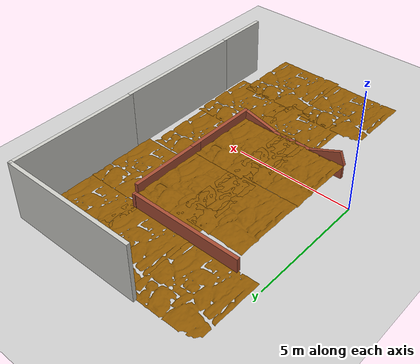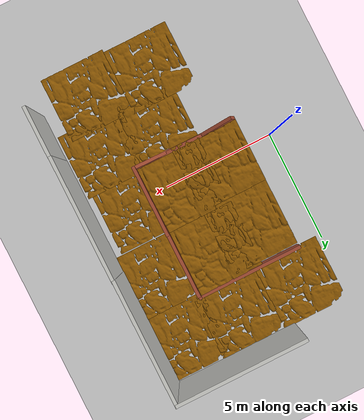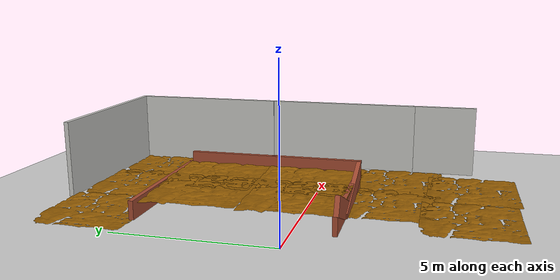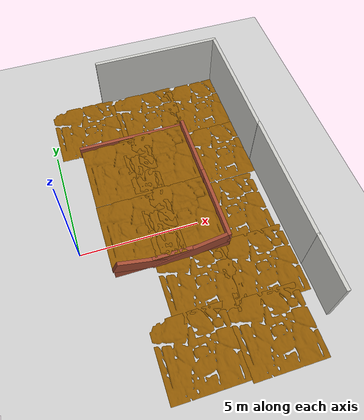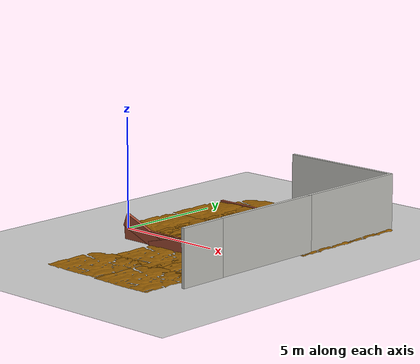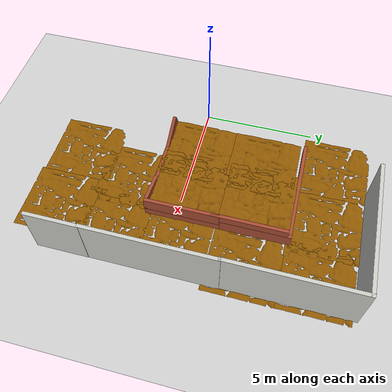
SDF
<sdf version="1.6">
 <world name="default">
  <model name="ground_plane">
   <static>1</static>
   <link name="link">
    <collision name="collision">
     <geometry><plane><normal>0 0 1</normal><size>100 100</size></plane></geometry>
     <surface>
      <contact><collide_bitmask>65535</collide_bitmask></contact>
      <friction><ode><mu>100</mu><mu2>50</mu2></ode></friction>
     </surface>
    </collision>
    <visual name="visual">
     <cast_shadows>0</cast_shadows>
     <geometry><plane><normal>0 0 1</normal><size>100 100</size></plane></geometry>
     <material>
      <script><uri>file://media/materials/scripts/gazebo.material</uri><name>Gazebo/Grey</name></script>
     </material>
    </visual>
   </link>
  </model>
  <model name="suelo_alto">
   <link name="link_0">
    <inertial>
     <mass>1</mass>
     <inertia>
      <ixx>0.166667</ixx>
      <ixy>0</ixy>
      <ixz>0</ixz>
      <iyy>0.166667</iyy>
      <iyz>0</iyz>
      <izz>0.166667</izz>
     </inertia>
    </inertial>
    <pose>-2e-06 0 0 0 -0 0</pose>
    <gravity>0</gravity>
    <visual name="visual">
     <pose>0 0 0.6 1.57 -0 0</pose>
     <geometry>
      <mesh>
       <uri>/home/christyan/catkin_sureveg/src/explorador_2/worlds/Plantas/roca2.stl</uri>
       <scale>0.005 0.003 0.005</scale>
      </mesh>
     </geometry>
     <material>
      <lighting>1</lighting>
      <script><uri>file://media/materials/scripts/gazebo.material</uri><name>Gazebo/Grey</name></script>
      <shader type="vertex"><normal_map>__default__</normal_map></shader>
      <ambient>0.561 0.349 0.008 1</ambient>
      <diffuse>0.333 0.341 0.325 1</diffuse>
      <specular>0.561 0.349 0.008 1</specular>
      <emissive>0 0 0 1</emissive>
     </material>
    </visual>
    <collision name="collision">
     <pose>0 0 0.6 1.57 -0 0</pose>
     <geometry>
      <mesh>
       <uri>/home/christyan/catkin_sureveg/src/explorador_2/worlds/Plantas/roca2.stl</uri>
       <scale>0.005 0.003 0.005</scale>
      </mesh>
     </geometry>
     <surface>
      <friction>
       <ode><mu>1</mu><mu2>1</mu2><fdir1>0 0 0</fdir1><slip1>0</slip1><slip2>0</slip2></ode>
       <torsional>
        <coefficient>1</coefficient>
        <patch_radius>0</patch_radius>
        <surface_radius>0</surface_radius>
        <use_patch_radius>1</use_patch_radius>
        <ode><slip>0</slip></ode>
       </torsional>
      </friction>
      <bounce><restitution_coefficient>0</restitution_coefficient><threshold>1e+06</threshold></bounce>
      <contact>
       <collide_without_contact>1</collide_without_contact>
       <collide_without_contact_bitmask>1</collide_without_contact_bitmask>
       <collide_bitmask>1</collide_bitmask>
       <ode>
        <soft_cfm>0</soft_cfm>
        <soft_erp>0.2</soft_erp>
        <kp>1e+13</kp>
        <kd>1</kd>
        <max_vel>0.01</max_vel>
        <min_depth>0</min_depth>
       </ode>
       <bullet>
        <split_impulse>1</split_impulse>
        <split_impulse_penetration_threshold>-0.01</split_impulse_penetration_threshold>
        <soft_cfm>0</soft_cfm>
        <soft_erp>0.2</soft_erp>
        <kp>1e+13</kp>
        <kd>1</kd>
       </bullet>
      </contact>
     </surface>
    </collision>
   </link>
   <static>0</static>
   <pose>2.60693 0.146391 0 0 -0 0</pose>
  </model>
  <model name="pared_corta_lad_2">
   <pose>3.53067 -1.26114 0 0 -0 0</pose>
   <link name="Wall_19">
    <collision name="Wall_19_Collision">
     <geometry><box><size>4.75 0.15 0.6</size></box></geometry>
     <pose>0 0 0.3 0 -0 0</pose>
    </collision>
    <visual name="Wall_19_Visual">
     <pose>0 0 0.3 0 -0 0</pose>
     <geometry><box><size>4.75 0.15 0.6</size></box></geometry>
     <material>
      <script><uri>file://media/materials/scripts/gazebo.material</uri><name>Gazebo/Bricks</name></script>
      <ambient>1 1 1 1</ambient>
     </material>
     <meta><layer>0</layer></meta>
    </visual>
   </link>
   <static>1</static>
  </model>
  <model name="pared_corta_ladrillo_1">
   <pose>5.85369 0.295655 0 0 -0 0</pose>
   <link name="Wall_13">
    <collision name="Wall_13_Collision">
     <geometry><box><size>3.25 0.15 0.6</size></box></geometry>
     <pose>0 0 0.3 0 -0 0</pose>
    </collision>
    <visual name="Wall_13_Visual">
     <pose>0 0 0.3 0 -0 0</pose>
     <geometry><box><size>3.25 0.15 0.6</size></box></geometry>
     <material>
      <script><uri>file://media/materials/scripts/gazebo.material</uri><name>Gazebo/Bricks</name></script>
      <ambient>0.996078 0.47451 0.0196078 1</ambient>
     </material>
     <meta><layer>0</layer></meta>
    </visual>
    <pose>0 -0 0 0 -0 1.5708</pose>
   </link>
   <static>1</static>
  </model>
  <model name="pared_corta_ladrillo_2">
   <pose>5.84693 3.30125 0 0 -0 0</pose>
   <link name="Wall_13">
    <collision name="Wall_13_Collision">
     <geometry><box><size>3.25 0.15 0.6</size></box></geometry>
     <pose>0 0 0.3 0 -0 0</pose>
    </collision>
    <visual name="Wall_13_Visual">
     <pose>0 0 0.3 0 -0 0</pose>
     <geometry><box><size>3.25 0.15 0.6</size></box></geometry>
     <material>
      <script><uri>file://media/materials/scripts/gazebo.material</uri><name>Gazebo/Bricks</name></script>
      <ambient>0.996078 0.47451 0.0196078 1</ambient>
     </material>
     <meta><layer>0</layer></meta>
    </visual>
    <pose>0 -0 0 0 -0 1.5708</pose>
   </link>
   <static>1</static>
  </model>
  <model name="pared_corta_lad_2_0">
   <pose>3.45558 4.83564 0 0 -0 0</pose>
   <link name="Wall_19">
    <collision name="Wall_19_Collision">
     <geometry><box><size>4.75 0.15 0.6</size></box></geometry>
     <pose>0 0 0.3 0 -0 0</pose>
    </collision>
    <visual name="Wall_19_Visual">
     <pose>0 0 0.3 0 -0 0</pose>
     <geometry><box><size>4.75 0.15 0.6</size></box></geometry>
     <material>
      <script><uri>file://media/materials/scripts/gazebo.material</uri><name>Gazebo/Bricks</name></script>
      <ambient>1 1 1 1</ambient>
     </material>
     <meta><layer>0</layer></meta>
    </visual>
   </link>
   <static>1</static>
  </model>
  <model name="suelo_alto_0">
   <link name="link_0">
    <inertial>
     <mass>1</mass>
     <inertia>
      <ixx>0.166667</ixx>
      <ixy>0</ixy>
      <ixz>0</ixz>
      <iyy>0.166667</iyy>
      <iyz>0</iyz>
      <izz>0.166667</izz>
     </inertia>
    </inertial>
    <pose>-2e-06 0 0 0 -0 0</pose>
    <gravity>0</gravity>
    <visual name="visual">
     <pose>0 0 0.6 1.57 -0 0</pose>
     <geometry>
      <mesh>
       <uri>/home/christyan/catkin_sureveg/src/explorador_2/worlds/Plantas/roca2.stl</uri>
       <scale>0.005 0.003 0.005</scale>
      </mesh>
     </geometry>
     <material>
      <lighting>1</lighting>
      <script><uri>file://media/materials/scripts/gazebo.material</uri><name>Gazebo/Grey</name></script>
      <shader type="vertex"><normal_map>__default__</normal_map></shader>
      <ambient>0.561 0.349 0.008 1</ambient>
      <diffuse>0.333 0.341 0.325 1</diffuse>
      <specular>0.561 0.349 0.008 1</specular>
      <emissive>0 0 0 1</emissive>
     </material>
    </visual>
    <collision name="collision">
     <pose>0 0 0.6 1.57 -0 0</pose>
     <geometry>
      <mesh>
       <uri>/home/christyan/catkin_sureveg/src/explorador_2/worlds/Plantas/roca2.stl</uri>
       <scale>0.005 0.003 0.005</scale>
      </mesh>
     </geometry>
     <surface>
      <friction>
       <ode><mu>1</mu><mu2>1</mu2><fdir1>0 0 0</fdir1><slip1>0</slip1><slip2>0</slip2></ode>
       <torsional>
        <coefficient>1</coefficient>
        <patch_radius>0</patch_radius>
        <surface_radius>0</surface_radius>
        <use_patch_radius>1</use_patch_radius>
        <ode><slip>0</slip></ode>
       </torsional>
      </friction>
      <bounce><restitution_coefficient>0</restitution_coefficient><threshold>1e+06</threshold></bounce>
      <contact>
       <collide_without_contact>1</collide_without_contact>
       <collide_without_contact_bitmask>1</collide_without_contact_bitmask>
       <collide_bitmask>1</collide_bitmask>
       <ode>
        <soft_cfm>0</soft_cfm>
        <soft_erp>0.2</soft_erp>
        <kp>1e+13</kp>
        <kd>1</kd>
        <max_vel>0.01</max_vel>
        <min_depth>0</min_depth>
       </ode>
       <bullet>
        <split_impulse>1</split_impulse>
        <split_impulse_penetration_threshold>-0.01</split_impulse_penetration_threshold>
        <soft_cfm>0</soft_cfm>
        <soft_erp>0.2</soft_erp>
        <kp>1e+13</kp>
        <kd>1</kd>
       </bullet>
      </contact>
     </surface>
    </collision>
   </link>
   <static>0</static>
   <pose>2.62225 3.13264 0 0 -0 0</pose>
  </model>
  <model name="suelo_alto_1">
   <link name="link_0">
    <inertial>
     <mass>1</mass>
     <inertia>
      <ixx>0.166667</ixx>
      <ixy>0</ixy>
      <ixz>0</ixz>
      <iyy>0.166667</iyy>
      <iyz>0</iyz>
      <izz>0.166667</izz>
     </inertia>
    </inertial>
    <pose>-2e-06 0 0 0 -0 0</pose>
    <gravity>0</gravity>
    <visual name="visual">
     <pose>0 0 0.6 1.57 -0 0</pose>
     <geometry>
      <mesh>
       <uri>/home/christyan/catkin_sureveg/src/explorador_2/worlds/Plantas/roca2.stl</uri>
       <scale>0.005 0.003 0.005</scale>
      </mesh>
     </geometry>
     <material>
      <lighting>1</lighting>
      <script><uri>file://media/materials/scripts/gazebo.material</uri><name>Gazebo/Grey</name></script>
      <shader type="vertex"><normal_map>__default__</normal_map></shader>
      <ambient>0.561 0.349 0.008 1</ambient>
      <diffuse>0.333 0.341 0.325 1</diffuse>
      <specular>0.561 0.349 0.008 1</specular>
      <emissive>0 0 0 1</emissive>
     </material>
    </visual>
    <collision name="collision">
     <pose>0 0 0.6 1.57 -0 0</pose>
     <geometry>
      <mesh>
       <uri>/home/christyan/catkin_sureveg/src/explorador_2/worlds/Plantas/roca2.stl</uri>
       <scale>0.005 0.003 0.005</scale>
      </mesh>
     </geometry>
     <surface>
      <friction>
       <ode><mu>1</mu><mu2>1</mu2><fdir1>0 0 0</fdir1><slip1>0</slip1><slip2>0</slip2></ode>
       <torsional>
        <coefficient>1</coefficient>
        <patch_radius>0</patch_radius>
        <surface_radius>0</surface_radius>
        <use_patch_radius>1</use_patch_radius>
        <ode><slip>0</slip></ode>
       </torsional>
      </friction>
      <bounce><restitution_coefficient>0</restitution_coefficient><threshold>1e+06</threshold></bounce>
      <contact>
       <collide_without_contact>1</collide_without_contact>
       <collide_without_contact_bitmask>1</collide_without_contact_bitmask>
       <collide_bitmask>1</collide_bitmask>
       <ode>
        <soft_cfm>0</soft_cfm>
        <soft_erp>0.2</soft_erp>
        <kp>1e+13</kp>
        <kd>1</kd>
        <max_vel>0.01</max_vel>
        <min_depth>0</min_depth>
       </ode>
       <bullet>
        <split_impulse>1</split_impulse>
        <split_impulse_penetration_threshold>-0.01</split_impulse_penetration_threshold>
        <soft_cfm>0</soft_cfm>
        <soft_erp>0.2</soft_erp>
        <kp>1e+13</kp>
        <kd>1</kd>
       </bullet>
      </contact>
     </surface>
    </collision>
   </link>
   <static>0</static>
   <pose>4.36566 0.301741 0 0 -0 0</pose>
  </model>
  <model name="suelo_alto_2">
   <link name="link_0">
    <inertial>
     <mass>1</mass>
     <inertia>
      <ixx>0.166667</ixx>
      <ixy>0</ixy>
      <ixz>0</ixz>
      <iyy>0.166667</iyy>
      <iyz>0</iyz>
      <izz>0.166667</izz>
     </inertia>
    </inertial>
    <pose>-2e-06 0 0 0 -0 0</pose>
    <gravity>0</gravity>
    <visual name="visual">
     <pose>0 0 0.6 1.57 -0 0</pose>
     <geometry>
      <mesh>
       <uri>/home/christyan/catkin_sureveg/src/explorador_2/worlds/Plantas/roca2.stl</uri>
       <scale>0.005 0.003 0.005</scale>
      </mesh>
     </geometry>
     <material>
      <lighting>1</lighting>
      <script><uri>file://media/materials/scripts/gazebo.material</uri><name>Gazebo/Grey</name></script>
      <shader type="vertex"><normal_map>__default__</normal_map></shader>
      <ambient>0.561 0.349 0.008 1</ambient>
      <diffuse>0.333 0.341 0.325 1</diffuse>
      <specular>0.561 0.349 0.008 1</specular>
      <emissive>0 0 0 1</emissive>
     </material>
    </visual>
    <collision name="collision">
     <pose>0 0 0.6 1.57 -0 0</pose>
     <geometry>
      <mesh>
       <uri>/home/christyan/catkin_sureveg/src/explorador_2/worlds/Plantas/roca2.stl</uri>
       <scale>0.005 0.003 0.005</scale>
      </mesh>
     </geometry>
     <surface>
      <friction>
       <ode><mu>1</mu><mu2>1</mu2><fdir1>0 0 0</fdir1><slip1>0</slip1><slip2>0</slip2></ode>
       <torsional>
        <coefficient>1</coefficient>
        <patch_radius>0</patch_radius>
        <surface_radius>0</surface_radius>
        <use_patch_radius>1</use_patch_radius>
        <ode><slip>0</slip></ode>
       </torsional>
      </friction>
      <bounce><restitution_coefficient>0</restitution_coefficient><threshold>1e+06</threshold></bounce>
      <contact>
       <collide_without_contact>1</collide_without_contact>
       <collide_without_contact_bitmask>1</collide_without_contact_bitmask>
       <collide_bitmask>1</collide_bitmask>
       <ode>
        <soft_cfm>0</soft_cfm>
        <soft_erp>0.2</soft_erp>
        <kp>1e+13</kp>
        <kd>1</kd>
        <max_vel>0.01</max_vel>
        <min_depth>0</min_depth>
       </ode>
       <bullet>
        <split_impulse>1</split_impulse>
        <split_impulse_penetration_threshold>-0.01</split_impulse_penetration_threshold>
        <soft_cfm>0</soft_cfm>
        <soft_erp>0.2</soft_erp>
        <kp>1e+13</kp>
        <kd>1</kd>
       </bullet>
      </contact>
     </surface>
    </collision>
   </link>
   <static>0</static>
   <pose>4.34843 3.27788 0 0 -0 0</pose>
  </model>
  <model name="pared_2_0">
   <pose>5.59936 7.8412 0 0 -0 0</pose>
   <link name="Wall_24">
    <collision name="Wall_24_Collision">
     <geometry><box><size>5.75 0.15 2.5</size></box></geometry>
     <pose>0 0 1.25 0 -0 0</pose>
    </collision>
    <visual name="Wall_24_Visual">
     <pose>0 0 1.25 0 -0 0</pose>
     <geometry><box><size>5.75 0.15 2.5</size></box></geometry>
     <material>
      <script><uri>file://media/materials/scripts/gazebo.material</uri><name>Gazebo/CeilingTiled</name></script>
      <ambient>1 1 1 1</ambient>
     </material>
     <meta><layer>0</layer></meta>
    </visual>
   </link>
   <static>1</static>
  </model>
  <model name="pared_1_2">
   <pose>8.41269 5.15772 0 0 -0 0</pose>
   <link name="Wall_21">
    <collision name="Wall_21_Collision">
     <geometry><box><size>5.5 0.15 2.5</size></box></geometry>
     <pose>0 0 1.25 0 -0 0</pose>
    </collision>
    <visual name="Wall_21_Visual">
     <pose>0 0 1.25 0 -0 0</pose>
     <geometry><box><size>5.5 0.15 2.5</size></box></geometry>
     <material>
      <script><uri>file://media/materials/scripts/gazebo.material</uri><name>Gazebo/CeilingTiled</name></script>
      <ambient>1 1 1 1</ambient>
     </material>
     <meta><layer>0</layer></meta>
    </visual>
    <pose>0 0 0 0 -0 -1.5708</pose>
   </link>
   <static>1</static>
  </model>
  <model name="pared_1_3">
   <pose>8.43088 -0.22917 0 0 -0 0</pose>
   <link name="Wall_21">
    <collision name="Wall_21_Collision">
     <geometry><box><size>5.5 0.15 2.5</size></box></geometry>
     <pose>0 0 1.25 0 -0 0</pose>
    </collision>
    <visual name="Wall_21_Visual">
     <pose>0 0 1.25 0 -0 0</pose>
     <geometry><box><size>5.5 0.15 2.5</size></box></geometry>
     <material>
      <script><uri>file://media/materials/scripts/gazebo.material</uri><name>Gazebo/CeilingTiled</name></script>
      <ambient>1 1 1 1</ambient>
     </material>
     <meta><layer>0</layer></meta>
    </visual>
    <pose>0 0 0 0 -0 -1.5708</pose>
   </link>
   <static>1</static>
  </model>
  <model name="pared4">
   <pose>8.44328 -4.0336 0 0 -0 0</pose>
   <link name="Wall_28">
    <collision name="Wall_28_Collision">
     <geometry><box><size>2.25 0.15 2.5</size></box></geometry>
     <pose>0 0 1.25 0 -0 0</pose>
    </collision>
    <visual name="Wall_28_Visual">
     <pose>0 0 1.25 0 -0 0</pose>
     <geometry><box><size>2.25 0.15 2.5</size></box></geometry>
     <material>
      <script><uri>file://media/materials/scripts/gazebo.material</uri><name>Gazebo/CeilingTiled</name></script>
      <ambient>1 1 1 1</ambient>
     </material>
     <meta><layer>0</layer></meta>
    </visual>
    <pose>-0 0 0 0 -0 -1.5708</pose>
   </link>
   <static>1</static>
  </model>
  <model name="suelo_1_1">
   <link name="link_0">
    <inertial>
     <mass>1</mass>
     <inertia>
      <ixx>0.166667</ixx>
      <ixy>0</ixy>
      <ixz>0</ixz>
      <iyy>0.166667</iyy>
      <iyz>0</iyz>
      <izz>0.166667</izz>
     </inertia>
    </inertial>
    <pose>-2e-06 0 0 0 -0 0</pose>
    <gravity>0</gravity>
    <visual name="visual">
     <pose>0 0 0 1.57 -0 0</pose>
     <geometry>
      <mesh>
       <uri>/home/christyan/catkin_sureveg/src/explorador_2/worlds/Plantas/roca2.stl</uri>
       <scale>0.005 0.003 0.005</scale>
      </mesh>
     </geometry>
     <material>
      <lighting>1</lighting>
      <script><uri>file://media/materials/scripts/gazebo.material</uri><name>Gazebo/Grey</name></script>
      <shader type="vertex"><normal_map>__default__</normal_map></shader>
      <ambient>0.561 0.349 0.008 1</ambient>
      <diffuse>0.333 0.341 0.325 1</diffuse>
      <specular>0.561 0.349 0.008 1</specular>
      <emissive>0 0 0 1</emissive>
     </material>
    </visual>
    <collision name="collision">
     <pose>0 0 0 1.57 -0 0</pose>
     <geometry>
      <mesh>
       <uri>/home/christyan/catkin_sureveg/src/explorador_2/worlds/Plantas/roca2.stl</uri>
       <scale>0.005 0.003 0.005</scale>
      </mesh>
     </geometry>
     <surface>
      <friction>
       <ode><mu>1</mu><mu2>1</mu2><fdir1>0 0 0</fdir1><slip1>0</slip1><slip2>0</slip2></ode>
       <torsional>
        <coefficient>1</coefficient>
        <patch_radius>0</patch_radius>
        <surface_radius>0</surface_radius>
        <use_patch_radius>1</use_patch_radius>
        <ode><slip>0</slip></ode>
       </torsional>
      </friction>
      <bounce><restitution_coefficient>0</restitution_coefficient><threshold>1e+06</threshold></bounce>
      <contact>
       <collide_without_contact>1</collide_without_contact>
       <collide_without_contact_bitmask>1</collide_without_contact_bitmask>
       <collide_bitmask>1</collide_bitmask>
       <ode>
        <soft_cfm>0</soft_cfm>
        <soft_erp>0.2</soft_erp>
        <kp>1e+13</kp>
        <kd>1</kd>
        <max_vel>0.01</max_vel>
        <min_depth>0</min_depth>
       </ode>
       <bullet>
        <split_impulse>1</split_impulse>
        <split_impulse_penetration_threshold>-0.01</split_impulse_penetration_threshold>
        <soft_cfm>0</soft_cfm>
        <soft_erp>0.2</soft_erp>
        <kp>1e+13</kp>
        <kd>1</kd>
       </bullet>
      </contact>
     </surface>
    </collision>
   </link>
   <static>0</static>
   <pose>1.72058 6.30894 0 0 -0 0</pose>
  </model>
  <model name="suelo_1_5">
   <link name="link_0">
    <inertial>
     <mass>1</mass>
     <inertia>
      <ixx>0.166667</ixx>
      <ixy>0</ixy>
      <ixz>0</ixz>
      <iyy>0.166667</iyy>
      <iyz>0</iyz>
      <izz>0.166667</izz>
     </inertia>
    </inertial>
    <pose>-2e-06 0 0 0 -0 0</pose>
    <gravity>0</gravity>
    <visual name="visual">
     <pose>0 0 0 1.57 -0 0</pose>
     <geometry>
      <mesh>
       <uri>/home/christyan/catkin_sureveg/src/explorador_2/worlds/Plantas/roca2.stl</uri>
       <scale>0.005 0.003 0.005</scale>
      </mesh>
     </geometry>
     <material>
      <lighting>1</lighting>
      <script><uri>file://media/materials/scripts/gazebo.material</uri><name>Gazebo/Grey</name></script>
      <shader type="vertex"><normal_map>__default__</normal_map></shader>
      <ambient>0.561 0.349 0.008 1</ambient>
      <diffuse>0.333 0.341 0.325 1</diffuse>
      <specular>0.561 0.349 0.008 1</specular>
      <emissive>0 0 0 1</emissive>
     </material>
    </visual>
    <collision name="collision">
     <pose>0 0 0 1.57 -0 0</pose>
     <geometry>
      <mesh>
       <uri>/home/christyan/catkin_sureveg/src/explorador_2/worlds/Plantas/roca2.stl</uri>
       <scale>0.005 0.003 0.005</scale>
      </mesh>
     </geometry>
     <surface>
      <friction>
       <ode><mu>1</mu><mu2>1</mu2><fdir1>0 0 0</fdir1><slip1>0</slip1><slip2>0</slip2></ode>
       <torsional>
        <coefficient>1</coefficient>
        <patch_radius>0</patch_radius>
        <surface_radius>0</surface_radius>
        <use_patch_radius>1</use_patch_radius>
        <ode><slip>0</slip></ode>
       </torsional>
      </friction>
      <bounce><restitution_coefficient>0</restitution_coefficient><threshold>1e+06</threshold></bounce>
      <contact>
       <collide_without_contact>1</collide_without_contact>
       <collide_without_contact_bitmask>1</collide_without_contact_bitmask>
       <collide_bitmask>1</collide_bitmask>
       <ode>
        <soft_cfm>0</soft_cfm>
        <soft_erp>0.2</soft_erp>
        <kp>1e+13</kp>
        <kd>1</kd>
        <max_vel>0.01</max_vel>
        <min_depth>0</min_depth>
       </ode>
       <bullet>
        <split_impulse>1</split_impulse>
        <split_impulse_penetration_threshold>-0.01</split_impulse_penetration_threshold>
        <soft_cfm>0</soft_cfm>
        <soft_erp>0.2</soft_erp>
        <kp>1e+13</kp>
        <kd>1</kd>
       </bullet>
      </contact>
     </surface>
    </collision>
   </link>
   <static>0</static>
   <pose>4.68724 6.33488 0 0 -0 0</pose>
  </model>
  <model name="suelo_1_6">
   <link name="link_0">
    <inertial>
     <mass>1</mass>
     <inertia>
      <ixx>0.166667</ixx>
      <ixy>0</ixy>
      <ixz>0</ixz>
      <iyy>0.166667</iyy>
      <iyz>0</iyz>
      <izz>0.166667</izz>
     </inertia>
    </inertial>
    <pose>-2e-06 0 0 0 -0 0</pose>
    <gravity>0</gravity>
    <visual name="visual">
     <pose>0 0 0 1.57 -0 0</pose>
     <geometry>
      <mesh>
       <uri>/home/christyan/catkin_sureveg/src/explorador_2/worlds/Plantas/roca2.stl</uri>
       <scale>0.005 0.003 0.005</scale>
      </mesh>
     </geometry>
     <material>
      <lighting>1</lighting>
      <script><uri>file://media/materials/scripts/gazebo.material</uri><name>Gazebo/Grey</name></script>
      <shader type="vertex"><normal_map>__default__</normal_map></shader>
      <ambient>0.561 0.349 0.008 1</ambient>
      <diffuse>0.333 0.341 0.325 1</diffuse>
      <specular>0.561 0.349 0.008 1</specular>
      <emissive>0 0 0 1</emissive>
     </material>
    </visual>
    <collision name="collision">
     <pose>0 0 0 1.57 -0 0</pose>
     <geometry>
      <mesh>
       <uri>/home/christyan/catkin_sureveg/src/explorador_2/worlds/Plantas/roca2.stl</uri>
       <scale>0.005 0.003 0.005</scale>
      </mesh>
     </geometry>
     <surface>
      <friction>
       <ode><mu>1</mu><mu2>1</mu2><fdir1>0 0 0</fdir1><slip1>0</slip1><slip2>0</slip2></ode>
       <torsional>
        <coefficient>1</coefficient>
        <patch_radius>0</patch_radius>
        <surface_radius>0</surface_radius>
        <use_patch_radius>1</use_patch_radius>
        <ode><slip>0</slip></ode>
       </torsional>
      </friction>
      <bounce><restitution_coefficient>0</restitution_coefficient><threshold>1e+06</threshold></bounce>
      <contact>
       <collide_without_contact>1</collide_without_contact>
       <collide_without_contact_bitmask>1</collide_without_contact_bitmask>
       <collide_bitmask>1</collide_bitmask>
       <ode>
        <soft_cfm>0</soft_cfm>
        <soft_erp>0.2</soft_erp>
        <kp>1e+13</kp>
        <kd>1</kd>
        <max_vel>0.01</max_vel>
        <min_depth>0</min_depth>
       </ode>
       <bullet>
        <split_impulse>1</split_impulse>
        <split_impulse_penetration_threshold>-0.01</split_impulse_penetration_threshold>
        <soft_cfm>0</soft_cfm>
        <soft_erp>0.2</soft_erp>
        <kp>1e+13</kp>
        <kd>1</kd>
       </bullet>
      </contact>
     </surface>
    </collision>
   </link>
   <static>0</static>
   <pose>7.22593 6.2212 0 0 -0 0</pose>
  </model>
  <model name="suelo_1_7">
   <link name="link_0">
    <inertial>
     <mass>1</mass>
     <inertia>
      <ixx>0.166667</ixx>
      <ixy>0</ixy>
      <ixz>0</ixz>
      <iyy>0.166667</iyy>
      <iyz>0</iyz>
      <izz>0.166667</izz>
     </inertia>
    </inertial>
    <pose>-2e-06 0 0 0 -0 0</pose>
    <gravity>0</gravity>
    <visual name="visual">
     <pose>0 0 0 1.57 -0 0</pose>
     <geometry>
      <mesh>
       <uri>/home/christyan/catkin_sureveg/src/explorador_2/worlds/Plantas/roca2.stl</uri>
       <scale>0.005 0.003 0.005</scale>
      </mesh>
     </geometry>
     <material>
      <lighting>1</lighting>
      <script><uri>file://media/materials/scripts/gazebo.material</uri><name>Gazebo/Grey</name></script>
      <shader type="vertex"><normal_map>__default__</normal_map></shader>
      <ambient>0.561 0.349 0.008 1</ambient>
      <diffuse>0.333 0.341 0.325 1</diffuse>
      <specular>0.561 0.349 0.008 1</specular>
      <emissive>0 0 0 1</emissive>
     </material>
    </visual>
    <collision name="collision">
     <pose>0 0 0 1.57 -0 0</pose>
     <geometry>
      <mesh>
       <uri>/home/christyan/catkin_sureveg/src/explorador_2/worlds/Plantas/roca2.stl</uri>
       <scale>0.005 0.003 0.005</scale>
      </mesh>
     </geometry>
     <surface>
      <friction>
       <ode><mu>1</mu><mu2>1</mu2><fdir1>0 0 0</fdir1><slip1>0</slip1><slip2>0</slip2></ode>
       <torsional>
        <coefficient>1</coefficient>
        <patch_radius>0</patch_radius>
        <surface_radius>0</surface_radius>
        <use_patch_radius>1</use_patch_radius>
        <ode><slip>0</slip></ode>
       </torsional>
      </friction>
      <bounce><restitution_coefficient>0</restitution_coefficient><threshold>1e+06</threshold></bounce>
      <contact>
       <collide_without_contact>1</collide_without_contact>
       <collide_without_contact_bitmask>1</collide_without_contact_bitmask>
       <collide_bitmask>1</collide_bitmask>
       <ode>
        <soft_cfm>0</soft_cfm>
        <soft_erp>0.2</soft_erp>
        <kp>1e+13</kp>
        <kd>1</kd>
        <max_vel>0.01</max_vel>
        <min_depth>0</min_depth>
       </ode>
       <bullet>
        <split_impulse>1</split_impulse>
        <split_impulse_penetration_threshold>-0.01</split_impulse_penetration_threshold>
        <soft_cfm>0</soft_cfm>
        <soft_erp>0.2</soft_erp>
        <kp>1e+13</kp>
        <kd>1</kd>
       </bullet>
      </contact>
     </surface>
    </collision>
   </link>
   <static>0</static>
   <pose>7.23531 3.26204 0 0 -0 0</pose>
  </model>
  <model name="suelo_1_8">
   <link name="link_0">
    <inertial>
     <mass>1</mass>
     <inertia>
      <ixx>0.166667</ixx>
      <ixy>0</ixy>
      <ixz>0</ixz>
      <iyy>0.166667</iyy>
      <iyz>0</iyz>
      <izz>0.166667</izz>
     </inertia>
    </inertial>
    <pose>-2e-06 0 0 0 -0 0</pose>
    <gravity>0</gravity>
    <visual name="visual">
     <pose>0 0 0 1.57 -0 0</pose>
     <geometry>
      <mesh>
       <uri>/home/christyan/catkin_sureveg/src/explorador_2/worlds/Plantas/roca2.stl</uri>
       <scale>0.005 0.003 0.005</scale>
      </mesh>
     </geometry>
     <material>
      <lighting>1</lighting>
      <script><uri>file://media/materials/scripts/gazebo.material</uri><name>Gazebo/Grey</name></script>
      <shader type="vertex"><normal_map>__default__</normal_map></shader>
      <ambient>0.561 0.349 0.008 1</ambient>
      <diffuse>0.333 0.341 0.325 1</diffuse>
      <specular>0.561 0.349 0.008 1</specular>
      <emissive>0 0 0 1</emissive>
     </material>
    </visual>
    <collision name="collision">
     <pose>0 0 0 1.57 -0 0</pose>
     <geometry>
      <mesh>
       <uri>/home/christyan/catkin_sureveg/src/explorador_2/worlds/Plantas/roca2.stl</uri>
       <scale>0.005 0.003 0.005</scale>
      </mesh>
     </geometry>
     <surface>
      <friction>
       <ode><mu>1</mu><mu2>1</mu2><fdir1>0 0 0</fdir1><slip1>0</slip1><slip2>0</slip2></ode>
       <torsional>
        <coefficient>1</coefficient>
        <patch_radius>0</patch_radius>
        <surface_radius>0</surface_radius>
        <use_patch_radius>1</use_patch_radius>
        <ode><slip>0</slip></ode>
       </torsional>
      </friction>
      <bounce><restitution_coefficient>0</restitution_coefficient><threshold>1e+06</threshold></bounce>
      <contact>
       <collide_without_contact>1</collide_without_contact>
       <collide_without_contact_bitmask>1</collide_without_contact_bitmask>
       <collide_bitmask>1</collide_bitmask>
       <ode>
        <soft_cfm>0</soft_cfm>
        <soft_erp>0.2</soft_erp>
        <kp>1e+13</kp>
        <kd>1</kd>
        <max_vel>0.01</max_vel>
        <min_depth>0</min_depth>
       </ode>
       <bullet>
        <split_impulse>1</split_impulse>
        <split_impulse_penetration_threshold>-0.01</split_impulse_penetration_threshold>
        <soft_cfm>0</soft_cfm>
        <soft_erp>0.2</soft_erp>
        <kp>1e+13</kp>
        <kd>1</kd>
       </bullet>
      </contact>
     </surface>
    </collision>
   </link>
   <static>0</static>
   <pose>6.58022 0.215808 0 0 -0 0</pose>
  </model>
  <model name="suelo_1_11">
   <link name="link_0">
    <inertial>
     <mass>1</mass>
     <inertia>
      <ixx>0.166667</ixx>
      <ixy>0</ixy>
      <ixz>0</ixz>
      <iyy>0.166667</iyy>
      <iyz>0</iyz>
      <izz>0.166667</izz>
     </inertia>
    </inertial>
    <pose>-2e-06 0 0 0 -0 0</pose>
    <gravity>0</gravity>
    <visual name="visual">
     <pose>0 0 0 1.57 -0 0</pose>
     <geometry>
      <mesh>
       <uri>/home/christyan/catkin_sureveg/src/explorador_2/worlds/Plantas/roca2.stl</uri>
       <scale>0.005 0.003 0.005</scale>
      </mesh>
     </geometry>
     <material>
      <lighting>1</lighting>
      <script><uri>file://media/materials/scripts/gazebo.material</uri><name>Gazebo/Grey</name></script>
      <shader type="vertex"><normal_map>__default__</normal_map></shader>
      <ambient>0.561 0.349 0.008 1</ambient>
      <diffuse>0.333 0.341 0.325 1</diffuse>
      <specular>0.561 0.349 0.008 1</specular>
      <emissive>0 0 0 1</emissive>
     </material>
    </visual>
    <collision name="collision">
     <pose>0 0 0 1.57 -0 0</pose>
     <geometry>
      <mesh>
       <uri>/home/christyan/catkin_sureveg/src/explorador_2/worlds/Plantas/roca2.stl</uri>
       <scale>0.005 0.003 0.005</scale>
      </mesh>
     </geometry>
     <surface>
      <friction>
       <ode><mu>1</mu><mu2>1</mu2><fdir1>0 0 0</fdir1><slip1>0</slip1><slip2>0</slip2></ode>
       <torsional>
        <coefficient>1</coefficient>
        <patch_radius>0</patch_radius>
        <surface_radius>0</surface_radius>
        <use_patch_radius>1</use_patch_radius>
        <ode><slip>0</slip></ode>
       </torsional>
      </friction>
      <bounce><restitution_coefficient>0</restitution_coefficient><threshold>1e+06</threshold></bounce>
      <contact>
       <collide_without_contact>1</collide_without_contact>
       <collide_without_contact_bitmask>1</collide_without_contact_bitmask>
       <collide_bitmask>1</collide_bitmask>
       <ode>
        <soft_cfm>0</soft_cfm>
        <soft_erp>0.2</soft_erp>
        <kp>1e+13</kp>
        <kd>1</kd>
        <max_vel>0.01</max_vel>
        <min_depth>0</min_depth>
       </ode>
       <bullet>
        <split_impulse>1</split_impulse>
        <split_impulse_penetration_threshold>-0.01</split_impulse_penetration_threshold>
        <soft_cfm>0</soft_cfm>
        <soft_erp>0.2</soft_erp>
        <kp>1e+13</kp>
        <kd>1</kd>
       </bullet>
      </contact>
     </surface>
    </collision>
   </link>
   <static>0</static>
   <pose>4.28521 -2.39882 0 0 -0 0</pose>
  </model>
  <model name="suelo_1_12">
   <link name="link_0">
    <inertial>
     <mass>1</mass>
     <inertia>
      <ixx>0.166667</ixx>
      <ixy>0</ixy>
      <ixz>0</ixz>
      <iyy>0.166667</iyy>
      <iyz>0</iyz>
      <izz>0.166667</izz>
     </inertia>
    </inertial>
    <pose>-2e-06 0 0 0 -0 0</pose>
    <gravity>0</gravity>
    <visual name="visual">
     <pose>0 0 0 1.57 -0 0</pose>
     <geometry>
      <mesh>
       <uri>/home/christyan/catkin_sureveg/src/explorador_2/worlds/Plantas/roca2.stl</uri>
       <scale>0.005 0.003 0.005</scale>
      </mesh>
     </geometry>
     <material>
      <lighting>1</lighting>
      <script><uri>file://media/materials/scripts/gazebo.material</uri><name>Gazebo/Grey</name></script>
      <shader type="vertex"><normal_map>__default__</normal_map></shader>
      <ambient>0.561 0.349 0.008 1</ambient>
      <diffuse>0.333 0.341 0.325 1</diffuse>
      <specular>0.561 0.349 0.008 1</specular>
      <emissive>0 0 0 1</emissive>
     </material>
    </visual>
    <collision name="collision">
     <pose>0 0 0 1.57 -0 0</pose>
     <geometry>
      <mesh>
       <uri>/home/christyan/catkin_sureveg/src/explorador_2/worlds/Plantas/roca2.stl</uri>
       <scale>0.005 0.003 0.005</scale>
      </mesh>
     </geometry>
     <surface>
      <friction>
       <ode><mu>1</mu><mu2>1</mu2><fdir1>0 0 0</fdir1><slip1>0</slip1><slip2>0</slip2></ode>
       <torsional>
        <coefficient>1</coefficient>
        <patch_radius>0</patch_radius>
        <surface_radius>0</surface_radius>
        <use_patch_radius>1</use_patch_radius>
        <ode><slip>0</slip></ode>
       </torsional>
      </friction>
      <bounce><restitution_coefficient>0</restitution_coefficient><threshold>1e+06</threshold></bounce>
      <contact>
       <collide_without_contact>1</collide_without_contact>
       <collide_without_contact_bitmask>1</collide_without_contact_bitmask>
       <collide_bitmask>1</collide_bitmask>
       <ode>
        <soft_cfm>0</soft_cfm>
        <soft_erp>0.2</soft_erp>
        <kp>1e+13</kp>
        <kd>1</kd>
        <max_vel>0.01</max_vel>
        <min_depth>0</min_depth>
       </ode>
       <bullet>
        <split_impulse>1</split_impulse>
        <split_impulse_penetration_threshold>-0.01</split_impulse_penetration_threshold>
        <soft_cfm>0</soft_cfm>
        <soft_erp>0.2</soft_erp>
        <kp>1e+13</kp>
        <kd>1</kd>
       </bullet>
      </contact>
     </surface>
    </collision>
   </link>
   <static>0</static>
   <pose>6.77236 -2.56519 0 0 -0 0</pose>
  </model>
  <model name="suelo_1_13">
   <link name="link_0">
    <inertial>
     <mass>1</mass>
     <inertia>
      <ixx>0.166667</ixx>
      <ixy>0</ixy>
      <ixz>0</ixz>
      <iyy>0.166667</iyy>
      <iyz>0</iyz>
      <izz>0.166667</izz>
     </inertia>
    </inertial>
    <pose>-2e-06 0 0 0 -0 0</pose>
    <gravity>0</gravity>
    <visual name="visual">
     <pose>0 0 0 1.57 -0 0</pose>
     <geometry>
      <mesh>
       <uri>/home/christyan/catkin_sureveg/src/explorador_2/worlds/Plantas/roca2.stl</uri>
       <scale>0.005 0.003 0.005</scale>
      </mesh>
     </geometry>
     <material>
      <lighting>1</lighting>
      <script><uri>file://media/materials/scripts/gazebo.material</uri><name>Gazebo/Grey</name></script>
      <shader type="vertex"><normal_map>__default__</normal_map></shader>
      <ambient>0.561 0.349 0.008 1</ambient>
      <diffuse>0.333 0.341 0.325 1</diffuse>
      <specular>0.561 0.349 0.008 1</specular>
      <emissive>0 0 0 1</emissive>
     </material>
    </visual>
    <collision name="collision">
     <pose>0 0 0 1.57 -0 0</pose>
     <geometry>
      <mesh>
       <uri>/home/christyan/catkin_sureveg/src/explorador_2/worlds/Plantas/roca2.stl</uri>
       <scale>0.005 0.003 0.005</scale>
      </mesh>
     </geometry>
     <surface>
      <friction>
       <ode><mu>1</mu><mu2>1</mu2><fdir1>0 0 0</fdir1><slip1>0</slip1><slip2>0</slip2></ode>
       <torsional>
        <coefficient>1</coefficient>
        <patch_radius>0</patch_radius>
        <surface_radius>0</surface_radius>
        <use_patch_radius>1</use_patch_radius>
        <ode><slip>0</slip></ode>
       </torsional>
      </friction>
      <bounce><restitution_coefficient>0</restitution_coefficient><threshold>1e+06</threshold></bounce>
      <contact>
       <collide_without_contact>1</collide_without_contact>
       <collide_without_contact_bitmask>1</collide_without_contact_bitmask>
       <collide_bitmask>1</collide_bitmask>
       <ode>
        <soft_cfm>0</soft_cfm>
        <soft_erp>0.2</soft_erp>
        <kp>1e+13</kp>
        <kd>1</kd>
        <max_vel>0.01</max_vel>
        <min_depth>0</min_depth>
       </ode>
       <bullet>
        <split_impulse>1</split_impulse>
        <split_impulse_penetration_threshold>-0.01</split_impulse_penetration_threshold>
        <soft_cfm>0</soft_cfm>
        <soft_erp>0.2</soft_erp>
        <kp>1e+13</kp>
        <kd>1</kd>
       </bullet>
      </contact>
     </surface>
    </collision>
   </link>
   <static>0</static>
   <pose>3.3266 -4.97513 0 0 -0 0</pose>
  </model>
  <model name="suelo_1_14">
   <link name="link_0">
    <inertial>
     <mass>1</mass>
     <inertia>
      <ixx>0.166667</ixx>
      <ixy>0</ixy>
      <ixz>0</ixz>
      <iyy>0.166667</iyy>
      <iyz>0</iyz>
      <izz>0.166667</izz>
     </inertia>
    </inertial>
    <pose>-2e-06 0 0 0 -0 0</pose>
    <gravity>0</gravity>
    <visual name="visual">
     <pose>0 0 0 1.57 -0 0</pose>
     <geometry>
      <mesh>
       <uri>/home/christyan/catkin_sureveg/src/explorador_2/worlds/Plantas/roca2.stl</uri>
       <scale>0.005 0.003 0.005</scale>
      </mesh>
     </geometry>
     <material>
      <lighting>1</lighting>
      <script><uri>file://media/materials/scripts/gazebo.material</uri><name>Gazebo/Grey</name></script>
      <shader type="vertex"><normal_map>__default__</normal_map></shader>
      <ambient>0.561 0.349 0.008 1</ambient>
      <diffuse>0.333 0.341 0.325 1</diffuse>
      <specular>0.561 0.349 0.008 1</specular>
      <emissive>0 0 0 1</emissive>
     </material>
    </visual>
    <collision name="collision">
     <pose>0 0 0 1.57 -0 0</pose>
     <geometry>
      <mesh>
       <uri>/home/christyan/catkin_sureveg/src/explorador_2/worlds/Plantas/roca2.stl</uri>
       <scale>0.005 0.003 0.005</scale>
      </mesh>
     </geometry>
     <surface>
      <friction>
       <ode><mu>1</mu><mu2>1</mu2><fdir1>0 0 0</fdir1><slip1>0</slip1><slip2>0</slip2></ode>
       <torsional>
        <coefficient>1</coefficient>
        <patch_radius>0</patch_radius>
        <surface_radius>0</surface_radius>
        <use_patch_radius>1</use_patch_radius>
        <ode><slip>0</slip></ode>
       </torsional>
      </friction>
      <bounce><restitution_coefficient>0</restitution_coefficient><threshold>1e+06</threshold></bounce>
      <contact>
       <collide_without_contact>1</collide_without_contact>
       <collide_without_contact_bitmask>1</collide_without_contact_bitmask>
       <collide_bitmask>1</collide_bitmask>
       <ode>
        <soft_cfm>0</soft_cfm>
        <soft_erp>0.2</soft_erp>
        <kp>1e+13</kp>
        <kd>1</kd>
        <max_vel>0.01</max_vel>
        <min_depth>0</min_depth>
       </ode>
       <bullet>
        <split_impulse>1</split_impulse>
        <split_impulse_penetration_threshold>-0.01</split_impulse_penetration_threshold>
        <soft_cfm>0</soft_cfm>
        <soft_erp>0.2</soft_erp>
        <kp>1e+13</kp>
        <kd>1</kd>
       </bullet>
      </contact>
     </surface>
    </collision>
   </link>
   <static>0</static>
   <pose>6.31309 -5.10409 0 0 -0 0</pose>
  </model>
  <model name="pared_corta_ladrillo_1_clone">
   <pose>2.60997 -1.26881 -0.014608 -0.386189 0.013433 -1.55763</pose>
   <link name="Wall_13">
    <collision name="Wall_13_Collision">
     <geometry><box><size>3.25 0.15 0.6</size></box></geometry>
     <pose>0 0 0.3 0 -0 0</pose>
    </collision>
    <visual name="Wall_13_Visual">
     <pose>0 0 0.3 0 -0 0</pose>
     <geometry><box><size>3.25 0.15 0.6</size></box></geometry>
     <material>
      <script><uri>file://media/materials/scripts/gazebo.material</uri><name>Gazebo/Bricks</name></script>
      <ambient>0.996078 0.47451 0.0196078 1</ambient>
     </material>
     <meta><layer>0</layer></meta>
    </visual>
    <pose>0 -0 0 0 -0 1.5708</pose>
   </link>
   <static>1</static>
  </model>
  <model name="pared_corta_ladrillo_clone_clone_0">
   <pose>5.85717 0.272707 0.375045 0 -0 0</pose>
   <link name="Wall_13">
    <collision name="Wall_13_Collision">
     <geometry><box><size>3.25 0.15 0.6</size></box></geometry>
     <pose>0 0 0.3 0 -0 0</pose>
    </collision>
    <visual name="Wall_13_Visual">
     <pose>0 0 0.3 0 -0 0</pose>
     <geometry><box><size>3.25 0.15 0.6</size></box></geometry>
     <material>
      <script><uri>file://media/materials/scripts/gazebo.material</uri><name>Gazebo/Bricks</name></script>
      <ambient>0.996078 0.47451 0.0196078 1</ambient>
     </material>
     <meta><layer>0</layer></meta>
    </visual>
    <pose>0 -0 0 0 -0 1.5708</pose>
   </link>
   <static>1</static>
  </model>
  <model name="pared_corta_ladrillo_clone_clone_1">
   <pose>5.84613 3.13281 0.375045 0 -0 0</pose>
   <link name="Wall_13">
    <collision name="Wall_13_Collision">
     <geometry><box><size>3.25 0.15 0.6</size></box></geometry>
     <pose>0 0 0.3 0 -0 0</pose>
    </collision>
    <visual name="Wall_13_Visual">
     <pose>0 0 0.3 0 -0 0</pose>
     <geometry><box><size>3.25 0.15 0.6</size></box></geometry>
     <material>
      <script><uri>file://media/materials/scripts/gazebo.material</uri><name>Gazebo/Bricks</name></script>
      <ambient>0.996078 0.47451 0.0196078 1</ambient>
     </material>
     <meta><layer>0</layer></meta>
    </visual>
    <pose>0 -0 0 0 -0 1.5708</pose>
   </link>
   <static>1</static>
  </model>
  <model name="pared_corta_ladrillo_1_clone_clone">
   <pose>4.36843 -1.28846 -0.016529 0.250771 0.013433 -1.55763</pose>
   <link name="Wall_13">
    <collision name="Wall_13_Collision">
     <geometry><box><size>3.25 0.15 0.6</size></box></geometry>
     <pose>0 0 0.3 0 -0 0</pose>
    </collision>
    <visual name="Wall_13_Visual">
     <pose>0 0 0.3 0 -0 0</pose>
     <geometry><box><size>3.25 0.15 0.6</size></box></geometry>
     <material>
      <script><uri>file://media/materials/scripts/gazebo.material</uri><name>Gazebo/Bricks</name></script>
      <ambient>0.996078 0.47451 0.0196078 1</ambient>
     </material>
     <meta><layer>0</layer></meta>
    </visual>
    <pose>0 -0 0 0 -0 1.5708</pose>
   </link>
   <static>1</static>
  </model>
 </world>
</sdf>
